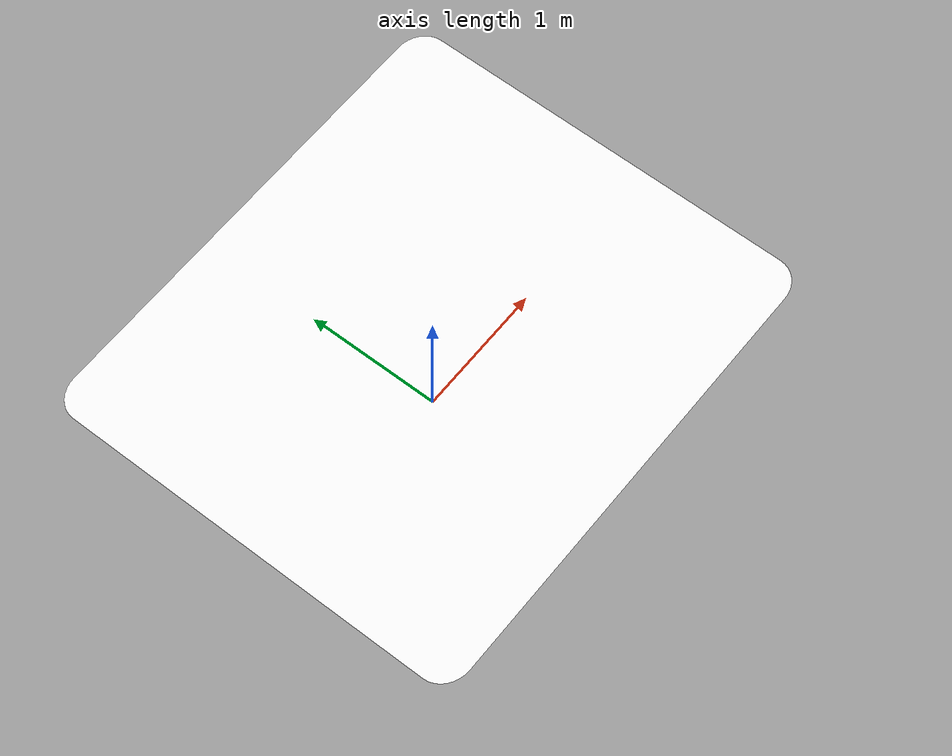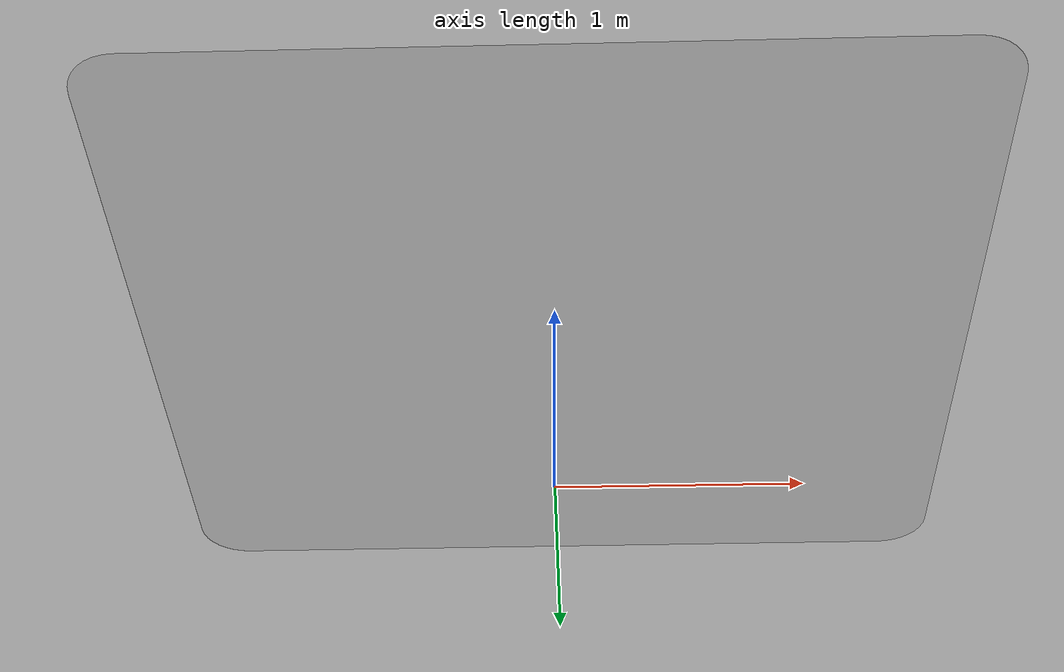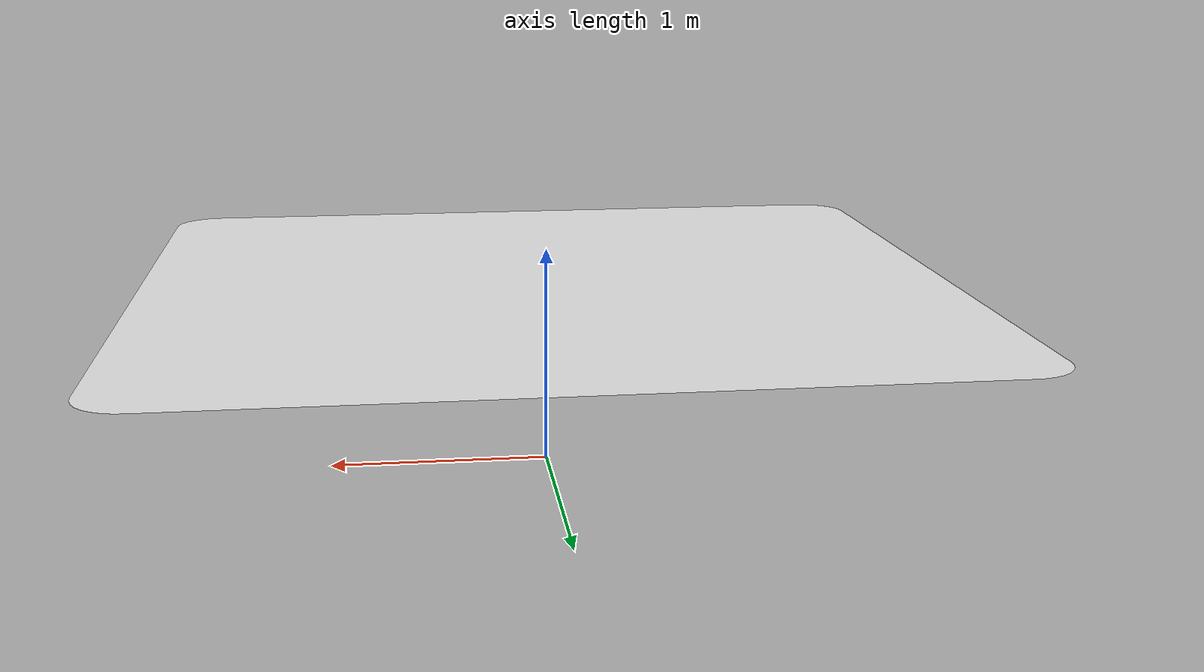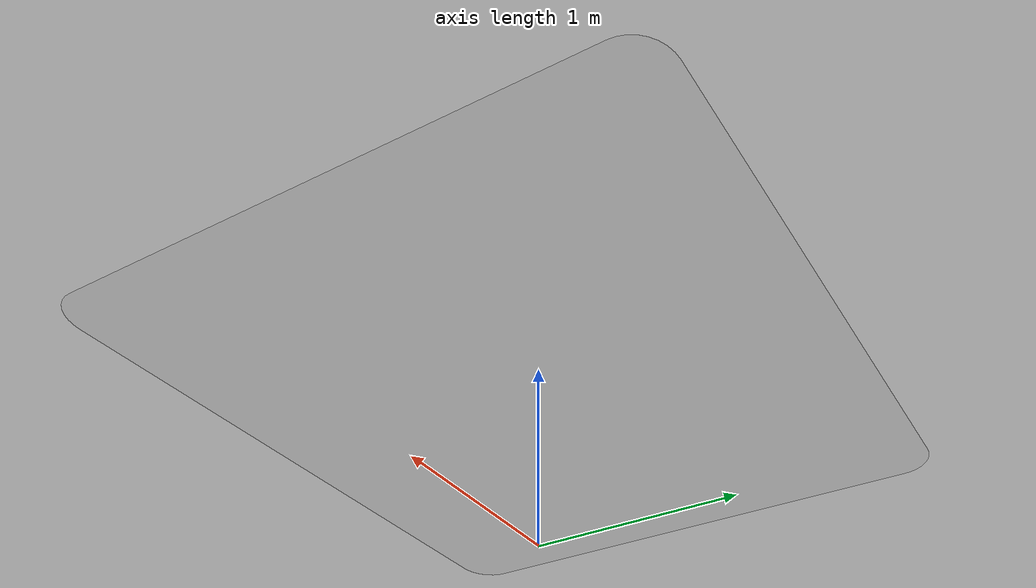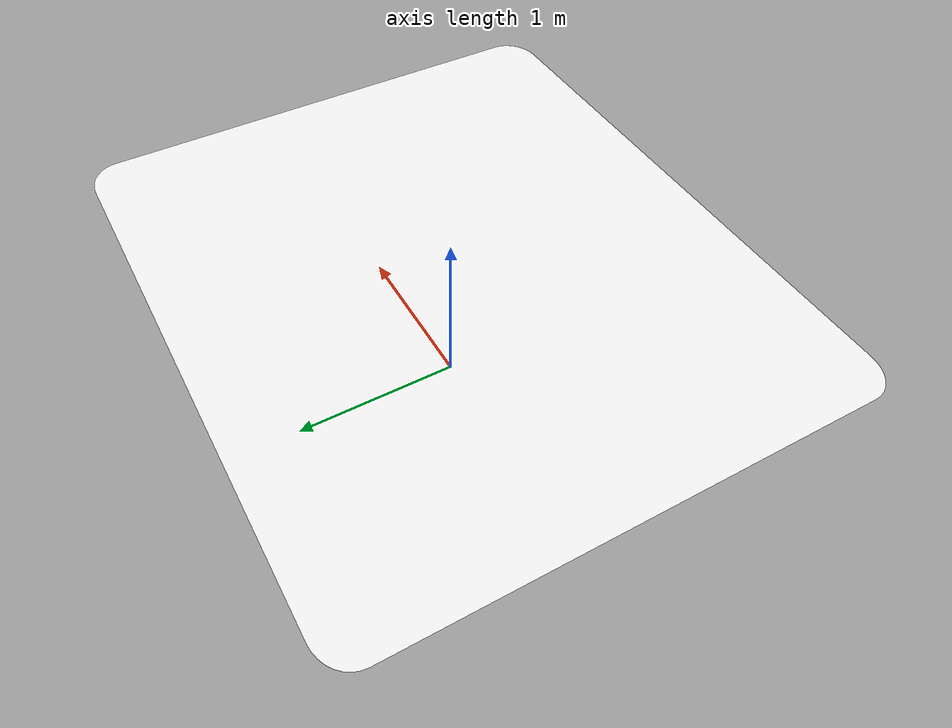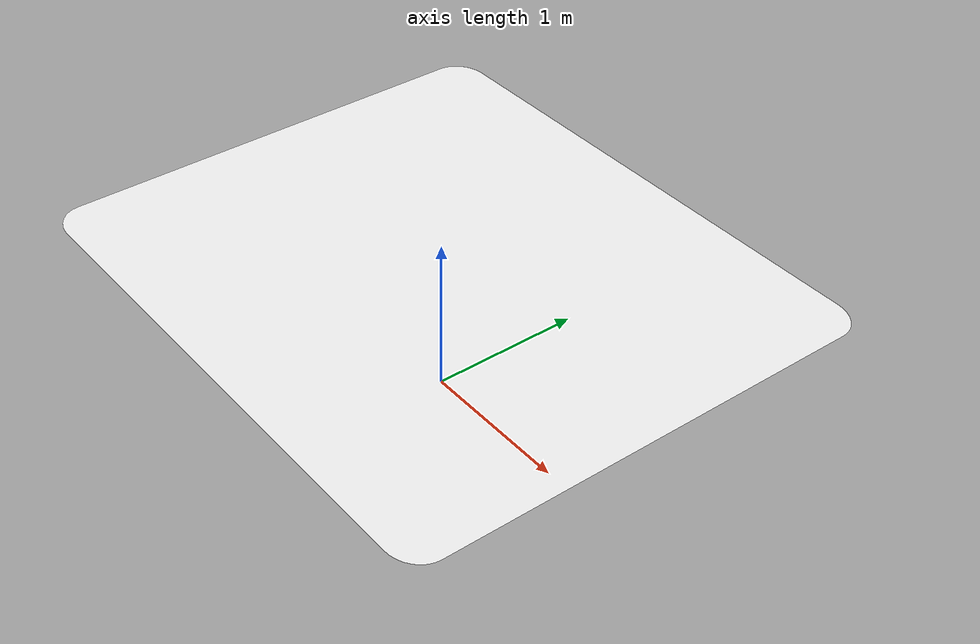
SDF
<?xml version="1.0" ?>
<sdf version="1.7">
  <model name="robotarium_tabletop">
    <static>true</static>
    <pose>0 0 0 0 0 0</pose>
    <link name="link">
      <collision name="collision">
        <geometry>
          <mesh>
            <uri>model://robotarium_tabletop/meshes/robotarium_tabletop.dae</uri>
            <scale>1.0 1.0 1.0</scale>
          </mesh>
        </geometry>
      </collision>
      <visual name="visual">
        <geometry>
          <mesh>
            <uri>model://robotarium_tabletop/meshes/robotarium_tabletop.dae</uri>
            <scale>1.0 1.0 1.0</scale>
          </mesh>
        </geometry>
        <material>
          <script>
            <uri>model://robotarium_tabletop/materials/scripts</uri>
            <uri>model://robotarium_tabletop/materials/textures</uri>
            <name>CheckeredGroundPlane1/Image</name>
          </script>
          <lighting>false</lighting>
        </material>
      </visual>
    </link>
  </model>
</sdf>
